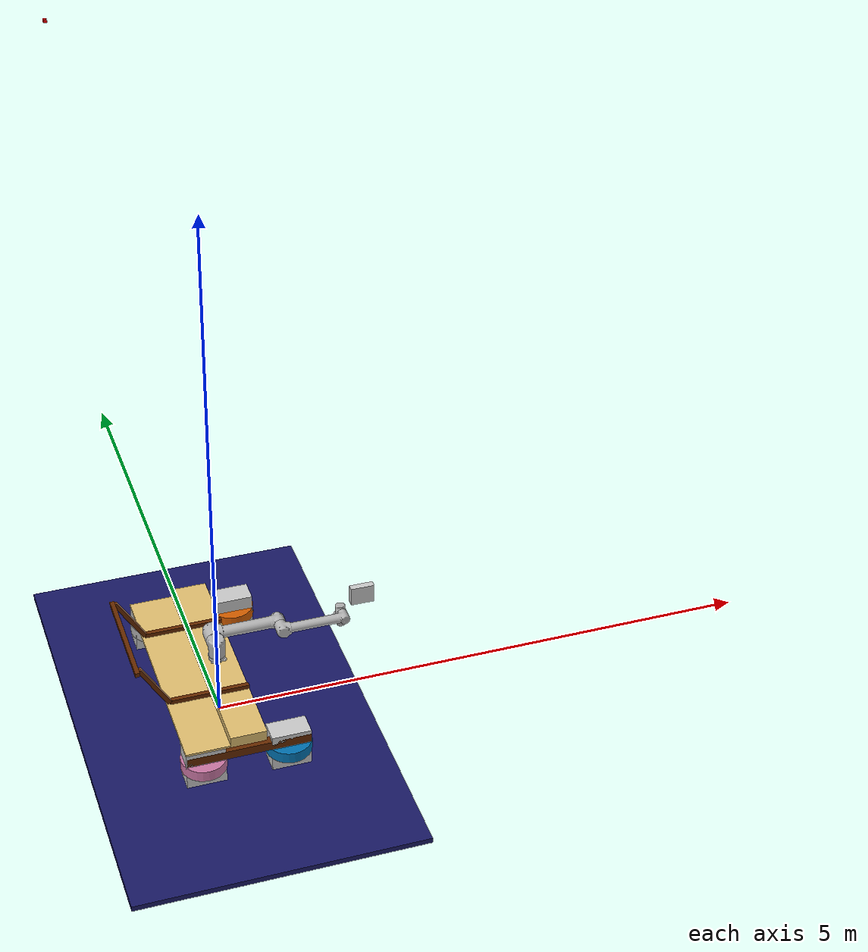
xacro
<?xml version="1.0"?>
<robot name="vegebot" xmlns:xacro="http://ros.org/wiki/xacro">

<!--
  Author: Simon Birrell
  BIRL Laboratory, Engineering Dept., University of Cambridge
-->

  <!-- Vegebot platform dimensions -->
  <xacro:property name="floor_thickness" value="0.05" />

  <xacro:property name="platform_width" value="2.12" />
  <xacro:property name="platform_height" value="0.58" />
  <xacro:property name="platform_length" value="0.32" />
  <xacro:property name="platform_depth" value="0.10" />

  <xacro:property name="rear_platform_width" value="2.12" />
  <xacro:property name="rear_platform_height" value="0.50" />
  <xacro:property name="rear_platform_length" value="0.39" />
  <xacro:property name="rear_platform_depth" value="0.02" />
  <xacro:property name="rear_platform_to_origin_x" value="0.2" />

  <xacro:property name="wheel_mount_width" value="0.20" />
  <xacro:property name="wheel_mount_depth" value="0.35" />
  <xacro:property name="wheel_mount_length" value="0.35" />
  <xacro:property name="wheel_mount_height" value="0.40" />
  <xacro:property name="wheel_mount_offset_x" value="0.04" />
  <xacro:property name="wheel_offset_x" value="0.155" />
  <xacro:property name="wheel_offset_z" value="-0.135" />
  <xacro:property name="wheel_length" value="0.10" />
  <xacro:property name="wheel_radius" value="0.20" />

  <xacro:property name="bucket_length" value="0.24" />
  <xacro:property name="bucket_radius" value="0.14" />
  <xacro:property name="ee_bucket_offset_x" value="0.12" />

  <xacro:property name="pneumatic_width" value="0.22" />
  <xacro:property name="pneumatic_depth" value="0.06" />
  <xacro:property name="pneumatic_length" value="0.18" />
  <xacro:property name="bucket_pneumatic_offset_x" value="0.0" />
  <xacro:property name="bucket_pneumatic_offset_y" value="0.28" />

  <xacro:property name="bar_width" value="0.04" />
  <xacro:property name="bar_depth" value="0.04" />
  <xacro:property name="bar_length" value="0.70" />

  <xacro:property name="strut_width" value="0.08" />
  <xacro:property name="strut_depth" value="0.08" />
  <xacro:property name="strut_length" value="1.09" />

  <xacro:property name="angled_bar_length" value="0.48" />
  <xacro:property name="cross_bar_length" value="1.02" />

  <xacro:property name="horizontal_bar_offset_y" value="0.47" />

  <xacro:property name="front_platform_to_origin_arm" value="0.16" />
  <xacro:property name="top_platform_to_origin_arm" value="0.0" />

  <xacro:property name="ee_camera_offset_x" value="0.1" />
  <xacro:property name="camera_size" value="0.05" />
  <xacro:property name="camera_offset_z" value="0.03" />

  <xacro:macro name="wheel_assembly">
    <visual>
      <geometry>
        <box size="${wheel_mount_length} ${wheel_mount_width} ${wheel_mount_depth}" />
      </geometry>
      <origin xyz="0.0 0.0 0.0" />
      <material name="grey">
        <color rgba="0.8 0.8 0.8 1" />
      </material>
    </visual>
    <visual>
      <geometry>
        <cylinder length="${wheel_length}" radius="${wheel_radius}">
        </cylinder>
        <origin xyz="${wheel_offset_x} 0.0 ${wheel_offset_z}" rpy="1.57075 0.0 0.0" />
        <material name="dark_grey">
          <color rgba="0.1 0.1 0.1 1" />
        </material>
      </geometry>
    </visual>
  </xacro:macro>

  <xacro:macro name="plywood_material">
      <material name="brown">
        <color rgba="0.89 0.7565 0.445 1" />
      </material>
  </xacro:macro>

  <xacro:macro name="bar_material">
      <material name="deep_brown">
        <color rgba="0.41 0.164 0.0 1" />
      </material>
  </xacro:macro>

  <!-- common stuff -->
  <xacro:include filename="$(find ur_description)/urdf/common.gazebo.xacro" />

  <!-- ur10 -->
  <xacro:include filename="$(find vegebot_run)/urdf/ur10.urdf.xacro" />

  <!-- arm -->
  <xacro:ur10_robot prefix="" joint_limited="true"/>

  <link name="world">
    <!-- Draw a floor -->
    <visual>
      <geometry>
        <box size="${platform_length * 8.0} ${platform_width * 2.0} ${floor_thickness}" />
      </geometry>
      <origin xyz="0.0 0.0 ${-floor_thickness / 2.0}" />
      <material name="gray">
        <color rgba="0.1 0.1 0.4 1" />
      </material>
    </visual>
  </link>

  <link name="platform">

    <visual>
      <geometry>
        <box size="${platform_length} ${platform_width} ${platform_depth}" />
      </geometry>
      <origin xyz="0.0 0.0 ${platform_height - platform_depth / 2.0}" />
      <xacro:plywood_material />
    </visual>

  </link>

  <link name="wheel_mount_front_right">
    <xacro:wheel_assembly />
  </link>

  <link name="wheel_mount_front_left">
    <xacro:wheel_assembly />
  </link>

  <link name="wheel_mount_back_right">
    <xacro:wheel_assembly />
  </link>

  <link name="wheel_mount_back_left">
    <xacro:wheel_assembly />
  </link>

  <xacro:macro name="strut" params="name">
    <link name="${name}">
      <visual>
        <geometry>
          <box size="${strut_length} ${strut_width} ${strut_depth}" />
        </geometry>
        <origin xyz="0.0 0.0 0.0" />
        <xacro:bar_material />
      </visual>
    </link>
  </xacro:macro>

  <xacro:strut name="strut_right" />
  <xacro:strut name="strut_left" />

  <xacro:macro name="bar" params="name length">
    <link name="${name}">
      <visual>
        <geometry>
          <box size="${length} ${bar_width} ${bar_depth}" />
        </geometry>
        <origin xyz="0.0 0.0 0.0" />
        <xacro:bar_material />
      </visual>
    </link>
  </xacro:macro>

  <xacro:macro name="angled_bar" params="name length">
    <link name="${name}">
      <visual>
        <geometry>
          <box size="${length} ${bar_width} ${bar_depth}" />
        </geometry>
        <origin xyz="${length / 2.0} 0.0 0.0" />
        <xacro:bar_material />
      </visual>
    </link>
  </xacro:macro>

  <xacro:macro name="cross_bar" params="name length">
    <link name="${name}">
      <visual>
        <geometry>
          <box size="${length} ${bar_width} ${bar_depth}" />
        </geometry>
        <origin xyz="0.0 0.0 0.0" rpy="0.0 0.0 0.0" />
        <xacro:bar_material />
      </visual>
    </link>
  </xacro:macro>

  <xacro:bar name="horizontal_bar_right" length="${bar_length}" />
  <xacro:bar name="horizontal_bar_left" length="${bar_length}" />
  <xacro:angled_bar name="angled_bar_right" length="${angled_bar_length}" />
  <xacro:angled_bar name="angled_bar_left" length="${angled_bar_length}" />
  <xacro:angled_bar name="cross_bar" length="${cross_bar_length}" />

  <link name="rear_platform">

    <visual>
      <geometry>
        <box size="${rear_platform_length} ${rear_platform_width} ${rear_platform_depth}" />
      </geometry>
      <origin xyz="0.0 0.0 ${rear_platform_height - rear_platform_depth / 2.0}" />
      <xacro:plywood_material />
    </visual>

  </link>

<xacro:macro name="side_constraint" params="side">
  <link name="constraint_${side}_side">
    <collision>
      <geometry>
        <box size="4.0 0.2 2.0" />
      </geometry>
      <origin xyz="0.0 0.0 0.0" rpy="0.0 0.0 0.0" />
    </collision>
    <xacro:plywood_material />
  </link>
</xacro:macro>

<xacro:side_constraint side="right" />
<xacro:side_constraint side="left" />

  <link name="camera_link">
    <visual>
      <geometry>
        <box size="${camera_size} ${camera_size} ${camera_size}" />
      </geometry>
      <origin xyz="0.0 0.0 0.0" />
      <material name="red">
         <color rgba="1 0 0 1" />
      </material>
    </visual>
  </link>

  <joint name="world_joint" type="fixed">
    <parent link="world" />
    <child link = "platform" />
    <origin xyz="0.0 0.0 0.0" rpy="0.0 0.0 0.0" />
  </joint>

  <joint name="world_to_rear_platform_joint" type="fixed">
    <parent link="world" />
    <child link = "rear_platform" />
    <origin xyz="${-(platform_length/2.0)-(rear_platform_length/2.0)} 0.0 0.0" rpy="0.0 0.0 0.0" />
  </joint>

  <joint name="platform_arm_joint" type="fixed">
    <parent link="platform" />
    <child link = "base_link" />
    <origin xyz="${(platform_length/2.0) - front_platform_to_origin_arm} 0.0 ${platform_height + top_platform_to_origin_arm}" rpy="0.0 0.0 0.0" />
  </joint>

  <xacro:macro name="wheel_assembly_joint" params="link x y" >
    <joint name="platform_wheel_mount_${link}_joint" type="fixed">
      <parent link="platform" />
      <child link = "wheel_mount_${link}" />
      <origin xyz="${x + wheel_mount_length / 2.0} ${y + wheel_mount_width/2.0} ${platform_height - platform_depth - wheel_mount_depth / 2.0}" rpy="0.0 0.0 0.0" />
    </joint>
  </xacro:macro>

  <xacro:wheel_assembly_joint link="front_right" x="${front_platform_to_origin_arm + wheel_mount_offset_x}" y="${-platform_width / 2.0}" />

  <xacro:wheel_assembly_joint link="front_left" x="${front_platform_to_origin_arm + wheel_mount_offset_x}" y="${platform_width / 2.0 - wheel_mount_width}" />

  <xacro:wheel_assembly_joint link="back_right" x="${front_platform_to_origin_arm - platform_length - rear_platform_length}" y="${-platform_width / 2.0}" />

  <xacro:wheel_assembly_joint link="back_left" x="${front_platform_to_origin_arm - platform_length - rear_platform_length}" y="${platform_width / 2.0 - wheel_mount_width}" />

<xacro:macro name="platform_horizontal_bar_joint" params="name y">
  <joint name="platform_horizontal_bar_${name}_joint" type="fixed">
    <parent link="platform" />
    <child link="horizontal_bar_${name}" />
    <origin xyz="${front_platform_to_origin_arm - bar_length / 2.0} ${y} ${platform_height + bar_depth / 2.0}" />
  </joint>
</xacro:macro>

<xacro:macro name="angled_bar_joint" params="name y">
  <joint name="platform_angled_bar_${name}_joint" type="fixed">
    <parent link="platform" />
    <child link="angled_bar_${name}" />
    <origin xyz="${front_platform_to_origin_arm - bar_length} ${y} ${platform_height + bar_depth / 2.0}" rpy="0.0 ${3.14+1.024} 0.0" />
  </joint>
</xacro:macro>

<xacro:platform_horizontal_bar_joint name="right" y="${-horizontal_bar_offset_y}" />
<xacro:platform_horizontal_bar_joint name="left" y="${horizontal_bar_offset_y}" />
<xacro:angled_bar_joint name="right" y="${-horizontal_bar_offset_y}" />
<xacro:angled_bar_joint name="left" y="${horizontal_bar_offset_y}" />

  <joint name="platform_cross_bar_joint" type="fixed">
    <parent link="platform" />
    <child link="cross_bar" />
    <origin xyz="${front_platform_to_origin_arm - bar_length - 0.27} ${-cross_bar_length / 2.0} ${platform_height + 0.41}" rpy="0.0 0.0 ${3.14 / 2.0}" />
  </joint>

  <xacro:macro name="platform_strut_joint" params="name y">
    <joint name="platform_strut_${name}_joint" type="fixed">
      <parent link="platform" />
      <child link="strut_${name}" />
      <origin xyz="${front_platform_to_origin_arm + wheel_mount_offset_x + wheel_mount_length - strut_length / 2.0} ${y} ${platform_height - platform_depth - strut_depth}" />
    </joint>
  </xacro:macro>

  <xacro:platform_strut_joint name="right" y="${platform_width / 2.0 - strut_width / 2.0}" />
  <xacro:platform_strut_joint name="left" y="${-platform_width / 2.0 + strut_width / 2.0}" />

  <xacro:macro name="platform_side_constraint" params="side y">
    <joint name="platform_${side}_side_constraint" type="fixed">
      <parent link="platform" />
      <child link="constraint_${side}_side" />
      <origin xyz="0.0 ${y} 1.0" rpy="0.0 0.0 0.0" />
    </joint>
  </xacro:macro>
  <xacro:platform_side_constraint side="right" y="${-platform_width / 2.0}" />
  <xacro:platform_side_constraint side="left" y="${platform_width / 2.0}" />

  <joint name="end_effector_joint" type="fixed">
    <parent link="ee_link" />
    <child link = "camera_link" />
    <origin xyz="14.0 0.0 0.0" rpy="0.0 0.0 0.0" />
  </joint>

  <link name="bucket_link">
  </link>

  <joint name="end_effector_bucket_joint" type="fixed">
    <parent link="ee_link" />
    <child link = "bucket_link" />
    <origin xyz="${ee_bucket_offset_x} 0.0 0.0" rpy="0.0 1.5708 0.0" />
  </joint>

  <link name="pneumatic_link">
    <visual>
      <geometry>
        <box size="${pneumatic_length} ${pneumatic_width} ${pneumatic_depth}" />
      </geometry>
      <origin xyz="0.0 0.0 0.0" rpy="0.0 0.0 0.0" />
       <material name="dark_gray">
        <color rgba="0.8 0.8 0.8 1" />
      </material>
    </visual>
  </link>

  <joint name="bucket_pneumatic_joint" type="fixed">
    <parent link="bucket_link" />
    <child link = "pneumatic_link" />

    <origin xyz="0.0 ${bucket_radius + pneumatic_width / 2.0 + 0.05} ${bucket_length / 2.0 - pneumatic_depth / 2.0}" rpy="0.0 0.0 0.0" />
  </joint>

</robot>

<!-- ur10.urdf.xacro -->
<robot xmlns:xacro="http://ros.org/wiki/xacro">

<!--
  Author: Kelsey Hawkins
  Contributers: Jimmy Da Silva, Ajit Krisshna N L, Muhammad Asif Rana
-->

  <xacro:include filename="$(find ur_description)/urdf/ur.transmission.xacro" />
  <xacro:include filename="$(find ur_description)/urdf/ur.gazebo.xacro" />

  <!-- Inertia parameters -->
  <xacro:property name="base_mass" value="4.0" />  <!-- This mass might be incorrect -->
  <xacro:property name="shoulder_mass" value="7.778" />
  <xacro:property name="upper_arm_mass" value="12.93" />
  <xacro:property name="forearm_mass" value="3.87" />
  <xacro:property name="wrist_1_mass" value="1.96" />
  <xacro:property name="wrist_2_mass" value="1.96" />
  <xacro:property name="wrist_3_mass" value="0.202" />

  <xacro:property name="shoulder_cog" value="0.00008 0.00244 -0.037" />
  <xacro:property name="upper_arm_cog" value="0.00001 0.15061 0.38757" />
  <xacro:property name="forearm_cog" value="-0.00012 0.06112 0.1984" />
  <xacro:property name="wrist_1_cog" value="-0.00021 -0.00112 0.02269" />
  <xacro:property name="wrist_2_cog" value="-0.00021 0.00112 0.002269" />
  <xacro:property name="wrist_3_cog" value="0 -0.001156 -0.00149" />

  <!-- Kinematic model -->
  <!-- Properties from urcontrol.conf -->
  <xacro:property name="ur10_d1" value="0.1273" />
  <xacro:property name="ur10_a2" value="-0.612" />
  <xacro:property name="ur10_a3" value="-0.5723" />
  <xacro:property name="ur10_d4" value="0.163941" />
  <xacro:property name="ur10_d5" value="0.1157" />
  <xacro:property name="ur10_d6" value="0.0922" />

  <!-- Arbitrary offsets for shoulder/elbow joints -->
  <xacro:property name="shoulder_offset" value="0.220941" />  <!-- measured from model -->
  <xacro:property name="elbow_offset" value="-0.1719" /> <!-- measured from model -->

  <!-- link lengths used in model -->
  <xacro:property name="shoulder_height" value="${ur10_d1}" />
  <xacro:property name="upper_arm_length" value="${-ur10_a2}" />
  <xacro:property name="forearm_length" value="${-ur10_a3}" />
  <xacro:property name="wrist_1_length" value="${ur10_d4 - elbow_offset - shoulder_offset}" />
  <xacro:property name="wrist_2_length" value="${ur10_d5}" />
  <xacro:property name="wrist_3_length" value="${ur10_d6}" />

  <xacro:macro name="cylinder_inertial" params="radius length mass *origin">
    <inertial>
      <mass value="${mass}" />
      <xacro:insert_block name="origin" />
      <inertia ixx="${0.0833333 * mass * (3 * radius * radius + length * length)}" ixy="0.0" ixz="0.0"
        iyy="${0.0833333 * mass * (3 * radius * radius + length * length)}" iyz="0.0"
        izz="${0.5 * mass * radius * radius}" />
    </inertial>
  </xacro:macro>

  <xacro:macro name="ur10_robot" params="prefix joint_limited
		 shoulder_pan_lower_limit:=${-pi}    shoulder_pan_upper_limit:=${pi}
		 shoulder_lift_lower_limit:=${-pi}    shoulder_lift_upper_limit:=${pi}
		 elbow_joint_lower_limit:=${-pi}    elbow_joint_upper_limit:=${pi}
		 wrist_1_lower_limit:=${-pi}    wrist_1_upper_limit:=${pi}
		 wrist_2_lower_limit:=${-pi}    wrist_2_upper_limit:=${pi}
		 wrist_3_lower_limit:=${-pi}    wrist_3_upper_limit:=${pi}">

    <link name="${prefix}base_link" >
      <visual>
        <geometry>
          <mesh filename="package://ur_description/meshes/ur10/visual/base.dae"/>
        </geometry>
        <material name="LightGrey">
          <color rgba="0.7 0.7 0.7 1.0"/>
        </material>
      </visual>
      <collision>
        <geometry>
          <mesh filename="package://ur_description/meshes/ur10/collision/base.stl"/>
        </geometry>
      </collision>
      <xacro:cylinder_inertial radius="0.075" length="0.038" mass="${base_mass}">
        <origin xyz="0.0 0.0 0.0" rpy="0 0 0" />
      </xacro:cylinder_inertial>
    </link>

    <joint name="${prefix}shoulder_pan_joint" type="revolute">
      <parent link="${prefix}base_link" />
      <child link = "${prefix}shoulder_link" />
      <origin xyz="0.0 0.0 ${shoulder_height}" rpy="0.0 0.0 0.0" />
      <axis xyz="0 0 1" />
      <xacro:unless value="${joint_limited}">
        <limit lower="${-2.0 * pi}" upper="${2.0 * pi}" effort="330.0" velocity="2.16"/>
      </xacro:unless>
      <xacro:if value="${joint_limited}">
        <limit lower="${shoulder_pan_lower_limit}" upper="${shoulder_pan_upper_limit}" effort="330.0" velocity="2.16"/>
      </xacro:if>
      <dynamics damping="0.0" friction="0.0"/>
    </joint>

    <link name="${prefix}shoulder_link">
      <visual>
        <geometry>
          <mesh filename="package://ur_description/meshes/ur10/visual/shoulder.dae"/>
        </geometry>
        <material name="LightGrey">
          <color rgba="0.7 0.7 0.7 1.0"/>
        </material>
      </visual>
      <collision>
        <geometry>
          <mesh filename="package://ur_description/meshes/ur10/collision/shoulder.stl"/>
        </geometry>
      </collision>
      <xacro:cylinder_inertial radius="0.075" length="0.178" mass="${shoulder_mass}">
        <origin xyz="0.0 0.0 0.0" rpy="0 0 0" />
      </xacro:cylinder_inertial>
    </link>

    <joint name="${prefix}shoulder_lift_joint" type="revolute">
      <parent link="${prefix}shoulder_link" />
      <child link = "${prefix}upper_arm_link" />
      <origin xyz="0.0 ${shoulder_offset} 0.0" rpy="0.0 ${pi / 2.0} 0.0" />
      <axis xyz="0 1 0" />
      <xacro:unless value="${joint_limited}">
        <limit lower="${-2.0 * pi}" upper="${2.0 * pi}" effort="330.0" velocity="2.16"/>
      </xacro:unless>
      <xacro:if value="${joint_limited}">
        <limit lower="${shoulder_lift_lower_limit}" upper="${shoulder_lift_upper_limit}" effort="330.0" velocity="2.16"/>
      </xacro:if>
      <dynamics damping="0.0" friction="0.0"/>
    </joint>

    <link name="${prefix}upper_arm_link">
      <visual>
        <geometry>
          <mesh filename="package://ur_description/meshes/ur10/visual/upperarm.dae"/>
        </geometry>
        <material name="LightGrey">
          <color rgba="0.7 0.7 0.7 1.0"/>
        </material>
      </visual>
      <collision>
        <geometry>
          <mesh filename="package://ur_description/meshes/ur10/collision/upperarm.stl"/>
        </geometry>
      </collision>
      <xacro:cylinder_inertial radius="0.075" length="${-ur10_a2}" mass="${upper_arm_mass}">
        <origin xyz="0.0 0.0 ${-ur10_a2/2.0}" rpy="0 0 0" />
      </xacro:cylinder_inertial>
    </link>

    <joint name="${prefix}elbow_joint" type="revolute">
      <parent link="${prefix}upper_arm_link" />
      <child link = "${prefix}forearm_link" />
      <origin xyz="0.0 ${elbow_offset} ${upper_arm_length}" rpy="0.0 0.0 0.0" />
      <axis xyz="0 1 0" />
      <xacro:unless value="${joint_limited}">
        <limit lower="${-1.0 * pi}" upper="${1.0 * pi}" effort="150.0" velocity="3.15"/>
      </xacro:unless>
      <xacro:if value="${joint_limited}">
        <limit lower="${elbow_joint_lower_limit}" upper="${elbow_joint_upper_limit}" effort="150.0" velocity="3.15"/>
      </xacro:if>
      <dynamics damping="0.0" friction="0.0"/>
    </joint>

    <link name="${prefix}forearm_link">
      <visual>
         <geometry>
          <mesh filename="package://ur_description/meshes/ur10/visual/forearm.dae"/>
        </geometry>
        <material name="LightGrey">
          <color rgba="0.7 0.7 0.7 1.0"/>
        </material>
      </visual>
      <collision>
        <geometry>
          <mesh filename="package://ur_description/meshes/ur10/collision/forearm.stl"/>
        </geometry>
      </collision>
      <xacro:cylinder_inertial radius="0.075" length="${-ur10_a3}" mass="${forearm_mass}">
        <origin xyz="0.0 0.0 ${-ur10_a3/2.0}" rpy="0 0 0" />
      </xacro:cylinder_inertial>
    </link>

    <joint name="${prefix}wrist_1_joint" type="revolute">
      <parent link="${prefix}forearm_link" />
      <child link = "${prefix}wrist_1_link" />
      <origin xyz="0.0 0.0 ${forearm_length}" rpy="0.0 ${pi / 2.0} 0.0" />
      <axis xyz="0 1 0" />
      <xacro:unless value="${joint_limited}">
        <limit lower="${-2.0 * pi}" upper="${2.0 * pi}" effort="54.0" velocity="3.2"/>
      </xacro:unless>
      <xacro:if value="${joint_limited}">
        <limit lower="${wrist_1_lower_limit}" upper="${wrist_1_upper_limit}" effort="54.0" velocity="3.2"/>
      </xacro:if>
      <dynamics damping="0.0" friction="0.0"/>
    </joint>

    <link name="${prefix}wrist_1_link">
      <visual>
        <geometry>
          <mesh filename="package://ur_description/meshes/ur10/visual/wrist1.dae"/>
        </geometry>
        <material name="LightGrey">
          <color rgba="0.7 0.7 0.7 1.0"/>
        </material>
      </visual>
      <collision>
        <geometry>
          <mesh filename="package://ur_description/meshes/ur10/collision/wrist1.stl"/>
        </geometry>
      </collision>
      <xacro:cylinder_inertial radius="0.075" length="0.12" mass="${wrist_1_mass}">
        <origin xyz="0.0 0.0 0.0" rpy="0 0 0" />
      </xacro:cylinder_inertial>
    </link>

    <joint name="${prefix}wrist_2_joint" type="revolute">
      <parent link="${prefix}wrist_1_link" />
      <child link = "${prefix}wrist_2_link" />
      <origin xyz="0.0 ${wrist_1_length} 0.0" rpy="0.0 0.0 0.0" />
      <axis xyz="0 0 1" />
      <xacro:unless value="${joint_limited}">
        <limit lower="${-2.0 * pi}" upper="${2.0 * pi}" effort="54.0" velocity="3.2"/>
      </xacro:unless>
      <xacro:if value="${joint_limited}">
        <limit lower="${wrist_2_lower_limit}" upper="${wrist_2_upper_limit}" effort="54.0" velocity="3.2"/>
      </xacro:if>
      <dynamics damping="0.0" friction="0.0"/>
    </joint>

    <link name="${prefix}wrist_2_link">
      <visual>
        <geometry>
          <mesh filename="package://ur_description/meshes/ur10/visual/wrist2.dae"/>
        </geometry>
        <material name="LightGrey">
          <color rgba="0.7 0.7 0.7 1.0"/>
        </material>
      </visual>
      <collision>
        <geometry>
          <mesh filename="package://ur_description/meshes/ur10/collision/wrist2.stl"/>
        </geometry>
      </collision>
      <xacro:cylinder_inertial radius="0.075" length="0.12" mass="${wrist_2_mass}">
        <origin xyz="0.0 0.0 0.0" rpy="0 0 0" />
      </xacro:cylinder_inertial>
    </link>

    <joint name="${prefix}wrist_3_joint" type="revolute">
      <parent link="${prefix}wrist_2_link" />
      <child link = "${prefix}wrist_3_link" />
      <origin xyz="0.0 0.0 ${wrist_2_length}" rpy="0.0 0.0 0.0" />
      <axis xyz="0 1 0" />
      <xacro:unless value="${joint_limited}">
        <limit lower="${-2.0 * pi}" upper="${2.0 * pi}" effort="54.0" velocity="3.2"/>
      </xacro:unless>
      <xacro:if value="${joint_limited}">
        <limit lower="${wrist_3_lower_limit}" upper="${wrist_3_upper_limit}" effort="54.0" velocity="3.2"/>
      </xacro:if>
      <dynamics damping="0.0" friction="0.0"/>
    </joint>

    <link name="${prefix}wrist_3_link">
      <visual>
        <geometry>
          <mesh filename="package://ur_description/meshes/ur10/visual/wrist3.dae"/>
        </geometry>
        <material name="LightGrey">
          <color rgba="0.7 0.7 0.7 1.0"/>
        </material>
      </visual>
      <collision>
        <geometry>
          <mesh filename="package://ur_description/meshes/ur10/collision/wrist3.stl"/>
        </geometry>
      </collision>
      <xacro:cylinder_inertial radius="0.075" length="0.12" mass="${wrist_3_mass}">
        <origin xyz="0.0 0.0 0.0" rpy="0 0 0" />
      </xacro:cylinder_inertial>
    </link>

    <joint name="${prefix}ee_fixed_joint" type="fixed">
      <parent link="${prefix}wrist_3_link" />
      <child link = "${prefix}ee_link" />
      <origin xyz="0.0 ${wrist_3_length} 0.0" rpy="0.0 0.0 ${pi/2.0}" />
    </joint>

    <link name="${prefix}ee_link">
      <collision>
        <geometry>
          <box size="0.01 0.01 0.01"/>
        </geometry>
        <origin rpy="0 0 0" xyz="-0.01 0 0"/>
      </collision>
    </link>

    <xacro:ur_arm_transmission prefix="${prefix}" />
    <xacro:ur_arm_gazebo prefix="${prefix}" />

    <!-- ROS base_link to UR 'Base' Coordinates transform -->
    <link name="${prefix}base"/>
    <joint name="${prefix}base_link-base_fixed_joint" type="fixed">
      <!-- NOTE: this rotation is only needed as long as base_link itself is
                 not corrected wrt the real robot (ie: rotated over 180
                 degrees)
      -->
      <origin xyz="0 0 0" rpy="0 0 ${-pi}"/>
      <parent link="${prefix}base_link"/>
      <child link="${prefix}base"/>
    </joint>

    <!-- Frame coincident with all-zeros TCP on UR controller -->
    <link name="${prefix}tool0"/>
    <joint name="${prefix}wrist_3_link-tool0_fixed_joint" type="fixed">
      <origin xyz="0 ${wrist_3_length} 0" rpy="${pi/-2.0} 0 0"/>
      <parent link="${prefix}wrist_3_link"/>
      <child link="${prefix}tool0"/>
    </joint>

  </xacro:macro>
</robot>
